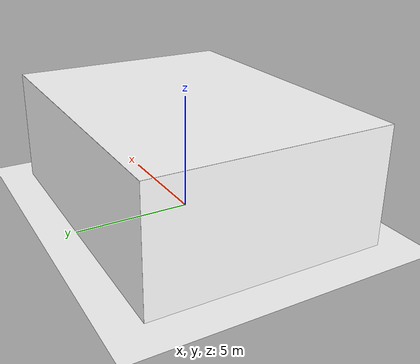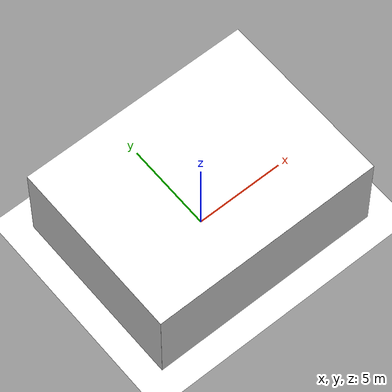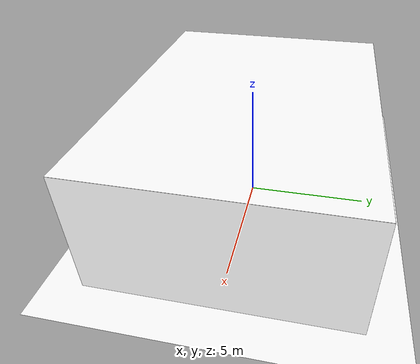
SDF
<sdf version="1.9">
 <world name="jordils">
  <plugin name="gz::sim::systems::Physics" filename="gz-sim-physics-system"/>
  <plugin name="gz::sim::systems::UserCommands" filename="gz-sim-user-commands-system"/>
  <plugin name="gz::sim::systems::SceneBroadcaster" filename="gz-sim-scene-broadcaster-system"/>
  <plugin name="gz::sim::systems::Contact" filename="gz-sim-contact-system"/>
  <plugin name="gz::sim::systems::Imu" filename="gz-sim-imu-system"/>
  <plugin name="gz::sim::systems::AirPressure" filename="gz-sim-air-pressure-system"/>
  <plugin name="gz::sim::systems::ApplyLinkWrench" filename="gz-sim-apply-link-wrench-system"/>
  <plugin name="gz::sim::systems::NavSat" filename="gz-sim-navsat-system"/>
  <plugin name="gz::sim::systems::Sensors" filename="gz-sim-sensors-system">
   <render_engine>ogre2</render_engine>
  </plugin>
  <gravity>0 0 -9.81</gravity>
  <physics type="ode">
   <max_step_size>0.001</max_step_size>
   <real_time_factor>1.0</real_time_factor>
   <real_time_update_rate>250</real_time_update_rate>
  </physics>
  <atmosphere type="adiabatic"/>
  <scene><ambient>0.8 0.5 1</ambient><grid>false</grid><shadows>0</shadows></scene>
  <light name="Light" type="point">
   <pose>0 0 5 0 0 0</pose>
   <cast_shadows>false</cast_shadows>
   <intensity>5</intensity>
  </light>
  <light type="directional" name="sun">
   <pose>0 0 5 0 0 0</pose>
   <diffuse>1.0 1.0 1.0 1.0</diffuse>
   <specular>0.5 0.5 0.5 1.0</specular>
   <attenuation>
    <range>1000</range>
    <constant>0.9</constant>
    <linear>0.01</linear>
    <quadratic>0.001</quadratic>
   </attenuation>
   <direction>-0.5 -0.5 -1</direction>
   <intensity>2</intensity>
  </light>
  <model name="ground_plane">
   <static>true</static>
   <link name="link">
    <collision name="collision">
     <geometry><plane><normal>0 0 1</normal><size>13 10</size></plane></geometry>
    </collision>
    <visual name="visual">
     <geometry><plane><normal>0 0 1</normal><size>13 10</size></plane></geometry>
     <material>
      <diffuse>1.0 1.0 1.0 1.0</diffuse>
      <pbr>
       <metal>
        <albedo_map>materials/textures/mattress.jpeg</albedo_map>
        <metalness>0.0</metalness>
        <roughness>1.0</roughness>
       </metal>
      </pbr>
     </material>
    </visual>
   </link>
  </model>
  <model name="top_plane">
   <static>true</static>
   <pose>0 0 5 0 0 0</pose>
   <link name="link">
    <visual name="visual">
     <geometry><plane><normal>0 0 -1</normal><size>13 10</size></plane></geometry>
     <material>
      <diffuse>1.0 1.0 1.0 1.0</diffuse>
      <pbr>
       <metal>
        <albedo_map>materials/textures/concrete.jpeg</albedo_map>
        <metalness>0.0</metalness>
        <roughness>1.0</roughness>
       </metal>
      </pbr>
     </material>
    </visual>
   </link>
  </model>
  <model name="left_plane">
   <static>true</static>
   <pose>0 5 2.5 0 0 0</pose>
   <link name="link">
    <collision name="collision">
     <geometry><plane><normal>0 -1 0</normal><size>13 5</size></plane></geometry>
    </collision>
    <visual name="visual">
     <geometry><plane><normal>0 -1 0</normal><size>13 5</size></plane></geometry>
     <material>
      <diffuse>1.0 1.0 1.0 1.0</diffuse>
      <pbr>
       <metal>
        <albedo_map>materials/textures/curtain.jpeg</albedo_map>
        <metalness>0.0</metalness>
        <roughness>1.0</roughness>
       </metal>
      </pbr>
     </material>
    </visual>
   </link>
  </model>
  <model name="right_plane">
   <static>true</static>
   <pose>0 -5 2.5 0 0 0</pose>
   <link name="link">
    <collision name="collision">
     <geometry><plane><normal>0 1 0</normal><size>13 5</size></plane></geometry>
    </collision>
    <visual name="visual">
     <geometry><plane><normal>0 1 0</normal><size>13 5</size></plane></geometry>
     <material>
      <diffuse>1.0 1.0 1.0 1.0</diffuse>
      <pbr>
       <metal>
        <albedo_map>materials/textures/curtain.jpeg</albedo_map>
        <metalness>0.0</metalness>
        <roughness>1.0</roughness>
       </metal>
      </pbr>
     </material>
    </visual>
   </link>
  </model>
  <model name="back_plane">
   <static>true</static>
   <pose>6.5 0 2.5 1.5708 0 0</pose>
   <link name="link">
    <collision name="collision">
     <geometry><plane><normal>-1 0 0</normal><size>10 5</size></plane></geometry>
    </collision>
    <visual name="visual">
     <geometry><plane><normal>-1 0 0</normal><size>10 5</size></plane></geometry>
     <material>
      <diffuse>1.0 1.0 1.0 1.0</diffuse>
      <pbr>
       <metal>
        <albedo_map>materials/textures/curtain.jpeg</albedo_map>
        <metalness>0.0</metalness>
        <roughness>1.0</roughness>
       </metal>
      </pbr>
     </material>
    </visual>
   </link>
  </model>
  <model name="front_plane">
   <static>true</static>
   <pose>-6.5 0 2.5 1.5708 0 0</pose>
   <link name="link">
    <collision name="collision">
     <geometry><plane><normal>1 0 0</normal><size>10 5</size></plane></geometry>
    </collision>
    <visual name="visual">
     <geometry><plane><normal>1 0 0</normal><size>10 5</size></plane></geometry>
     <material>
      <diffuse>1.0 1.0 1.0 1.0</diffuse>
      <pbr>
       <metal>
        <albedo_map>materials/textures/curtain.jpeg</albedo_map>
        <metalness>0.0</metalness>
        <roughness>1.0</roughness>
       </metal>
      </pbr>
     </material>
    </visual>
   </link>
  </model>
  <spherical_coordinates>
   <surface_model>EARTH_WGS84</surface_model>
   <world_frame_orientation>ENU</world_frame_orientation>
   <latitude_deg>0</latitude_deg>
   <longitude_deg>0</longitude_deg>
   <elevation>0</elevation>
  </spherical_coordinates>
 </world>
</sdf>
